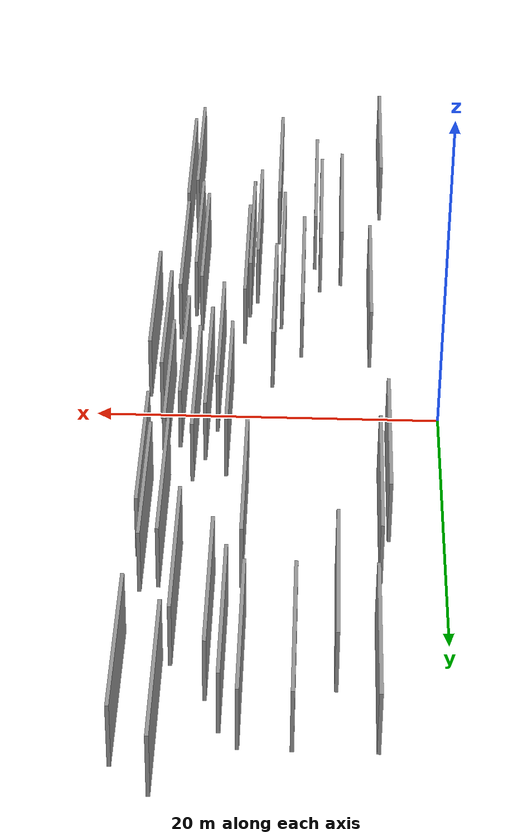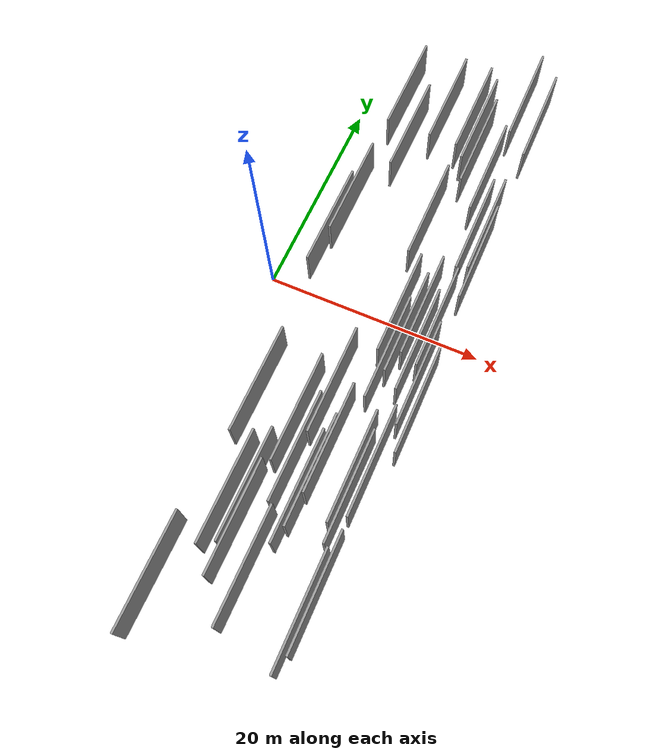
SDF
<sdf version="1.6">
 <world name="default">
  <scene>
   <sky><clouds><speed>12</speed></clouds></sky>
   <ambient>0.4 0.4 0.4 1</ambient>
   <background>0.7 0.7 0.7 1</background>
   <shadows>1</shadows>
  </scene>
  <gravity>0 0 -9.8066</gravity>
  <magnetic_field>6e-06 2.3e-05 -4.2e-05</magnetic_field>
  <physics default="0" name="default_physics" type="ode">
   <ode>
    <solver>
     <type>quick</type>
     <iters>10</iters>
     <sor>1.0</sor>
     <use_dynamic_moi_rescaling>0</use_dynamic_moi_rescaling>
    </solver>
    <constraints>
     <cfm>0</cfm>
     <erp>0.2</erp>
     <contact_max_correcting_vel>100</contact_max_correcting_vel>
     <contact_surface_layer>0.001</contact_surface_layer>
    </constraints>
   </ode>
   <max_step_size>0.004</max_step_size>
   <real_time_factor>1</real_time_factor>
   <real_time_update_rate>250</real_time_update_rate>
  </physics>
  <light name="sun" type="directional">
   <pose>0 0 10 0 0 0</pose>
   <diffuse>0.8 0.8 0.8 1</diffuse>
   <specular>0.2 0.2 0.2 1</specular>
   <attenuation>
    <range>1000</range>
    <constant>0.9</constant>
    <linear>0.01</linear>
    <quadratic>0.001</quadratic>
   </attenuation>
   <direction>-0.5 0.1 -0.9</direction>
  </light>
  <model name="grey_wall_1">
   <static>1</static>
   <pose>5.8728 18.7389 0.0 0.000000 0.000000 1.570796</pose>
   <link name="link">
    <pose>0 0 2.00 0 0 0</pose>
    <collision name="collision"><geometry><box><size>10.00 0.2 4.00</size></box></geometry></collision>
    <visual name="visual">
     <cast_shadows>0</cast_shadows>
     <geometry><box><size>10.00 0.2 4.00</size></box></geometry>
     <material>
      <script>
       <uri>model://grey_wall/materials/scripts</uri>
       <uri>model://grey_wall/materials/textures</uri>
       <name>vrc/grey_wall</name>
      </script>
     </material>
    </visual>
   </link>
  </model>
  <model name="grey_wall_2">
   <static>1</static>
   <pose>15.1165 -25.6748 0.0 0.000000 0.000000 1.570796</pose>
   <link name="link">
    <pose>0 0 2.00 0 0 0</pose>
    <collision name="collision"><geometry><box><size>10.00 0.2 4.00</size></box></geometry></collision>
    <visual name="visual">
     <cast_shadows>0</cast_shadows>
     <geometry><box><size>10.00 0.2 4.00</size></box></geometry>
     <material>
      <script>
       <uri>model://grey_wall/materials/scripts</uri>
       <uri>model://grey_wall/materials/textures</uri>
       <name>vrc/grey_wall</name>
      </script>
     </material>
    </visual>
   </link>
  </model>
  <model name="grey_wall_3">
   <static>1</static>
   <pose>11.5987 -12.6963 0.0 0.000000 0.000000 1.570796</pose>
   <link name="link">
    <pose>0 0 2.00 0 0 0</pose>
    <collision name="collision"><geometry><box><size>10.00 0.2 4.00</size></box></geometry></collision>
    <visual name="visual">
     <cast_shadows>0</cast_shadows>
     <geometry><box><size>10.00 0.2 4.00</size></box></geometry>
     <material>
      <script>
       <uri>model://grey_wall/materials/scripts</uri>
       <uri>model://grey_wall/materials/textures</uri>
       <name>vrc/grey_wall</name>
      </script>
     </material>
    </visual>
   </link>
  </model>
  <model name="grey_wall_4">
   <static>1</static>
   <pose>13.4539 -0.6792 0.0 0.000000 0.000000 1.570796</pose>
   <link name="link">
    <pose>0 0 2.00 0 0 0</pose>
    <collision name="collision"><geometry><box><size>10.00 0.2 4.00</size></box></geometry></collision>
    <visual name="visual">
     <cast_shadows>0</cast_shadows>
     <geometry><box><size>10.00 0.2 4.00</size></box></geometry>
     <material>
      <script>
       <uri>model://grey_wall/materials/scripts</uri>
       <uri>model://grey_wall/materials/textures</uri>
       <name>vrc/grey_wall</name>
      </script>
     </material>
    </visual>
   </link>
  </model>
  <model name="grey_wall_5">
   <static>1</static>
   <pose>14.0933 1.3699 0.0 0.000000 0.000000 1.570796</pose>
   <link name="link">
    <pose>0 0 2.00 0 0 0</pose>
    <collision name="collision"><geometry><box><size>10.00 0.2 4.00</size></box></geometry></collision>
    <visual name="visual">
     <cast_shadows>0</cast_shadows>
     <geometry><box><size>10.00 0.2 4.00</size></box></geometry>
     <material>
      <script>
       <uri>model://grey_wall/materials/scripts</uri>
       <uri>model://grey_wall/materials/textures</uri>
       <name>vrc/grey_wall</name>
      </script>
     </material>
    </visual>
   </link>
  </model>
  <model name="grey_wall_6">
   <static>1</static>
   <pose>11.3652 -15.6783 0.0 0.000000 0.000000 1.570796</pose>
   <link name="link">
    <pose>0 0 2.00 0 0 0</pose>
    <collision name="collision"><geometry><box><size>10.00 0.2 4.00</size></box></geometry></collision>
    <visual name="visual">
     <cast_shadows>0</cast_shadows>
     <geometry><box><size>10.00 0.2 4.00</size></box></geometry>
     <material>
      <script>
       <uri>model://grey_wall/materials/scripts</uri>
       <uri>model://grey_wall/materials/textures</uri>
       <name>vrc/grey_wall</name>
      </script>
     </material>
    </visual>
   </link>
  </model>
  <model name="grey_wall_7">
   <static>1</static>
   <pose>8.0963 -11.3544 0.0 0.000000 0.000000 1.570796</pose>
   <link name="link">
    <pose>0 0 2.00 0 0 0</pose>
    <collision name="collision"><geometry><box><size>10.00 0.2 4.00</size></box></geometry></collision>
    <visual name="visual">
     <cast_shadows>0</cast_shadows>
     <geometry><box><size>10.00 0.2 4.00</size></box></geometry>
     <material>
      <script>
       <uri>model://grey_wall/materials/scripts</uri>
       <uri>model://grey_wall/materials/textures</uri>
       <name>vrc/grey_wall</name>
      </script>
     </material>
    </visual>
   </link>
  </model>
  <model name="grey_wall_8">
   <static>1</static>
   <pose>14.9226 26.5266 0.0 0.000000 0.000000 1.570796</pose>
   <link name="link">
    <pose>0 0 2.00 0 0 0</pose>
    <collision name="collision"><geometry><box><size>10.00 0.2 4.00</size></box></geometry></collision>
    <visual name="visual">
     <cast_shadows>0</cast_shadows>
     <geometry><box><size>10.00 0.2 4.00</size></box></geometry>
     <material>
      <script>
       <uri>model://grey_wall/materials/scripts</uri>
       <uri>model://grey_wall/materials/textures</uri>
       <name>vrc/grey_wall</name>
      </script>
     </material>
    </visual>
   </link>
  </model>
  <model name="grey_wall_9">
   <static>1</static>
   <pose>11.7307 21.9676 0.0 0.000000 0.000000 1.570796</pose>
   <link name="link">
    <pose>0 0 2.00 0 0 0</pose>
    <collision name="collision"><geometry><box><size>10.00 0.2 4.00</size></box></geometry></collision>
    <visual name="visual">
     <cast_shadows>0</cast_shadows>
     <geometry><box><size>10.00 0.2 4.00</size></box></geometry>
     <material>
      <script>
       <uri>model://grey_wall/materials/scripts</uri>
       <uri>model://grey_wall/materials/textures</uri>
       <name>vrc/grey_wall</name>
      </script>
     </material>
    </visual>
   </link>
  </model>
  <model name="grey_wall_10">
   <static>1</static>
   <pose>16.7326 8.2308 0.0 0.000000 0.000000 1.570796</pose>
   <link name="link">
    <pose>0 0 2.00 0 0 0</pose>
    <collision name="collision"><geometry><box><size>10.00 0.2 4.00</size></box></geometry></collision>
    <visual name="visual">
     <cast_shadows>0</cast_shadows>
     <geometry><box><size>10.00 0.2 4.00</size></box></geometry>
     <material>
      <script>
       <uri>model://grey_wall/materials/scripts</uri>
       <uri>model://grey_wall/materials/textures</uri>
       <name>vrc/grey_wall</name>
      </script>
     </material>
    </visual>
   </link>
  </model>
  <model name="grey_wall_11">
   <static>1</static>
   <pose>9.7531 -24.4220 0.0 0.000000 0.000000 1.570796</pose>
   <link name="link">
    <pose>0 0 2.00 0 0 0</pose>
    <collision name="collision"><geometry><box><size>10.00 0.2 4.00</size></box></geometry></collision>
    <visual name="visual">
     <cast_shadows>0</cast_shadows>
     <geometry><box><size>10.00 0.2 4.00</size></box></geometry>
     <material>
      <script>
       <uri>model://grey_wall/materials/scripts</uri>
       <uri>model://grey_wall/materials/textures</uri>
       <name>vrc/grey_wall</name>
      </script>
     </material>
    </visual>
   </link>
  </model>
  <model name="grey_wall_12">
   <static>1</static>
   <pose>9.7805 -8.0436 0.0 0.000000 0.000000 1.570796</pose>
   <link name="link">
    <pose>0 0 2.00 0 0 0</pose>
    <collision name="collision"><geometry><box><size>10.00 0.2 4.00</size></box></geometry></collision>
    <visual name="visual">
     <cast_shadows>0</cast_shadows>
     <geometry><box><size>10.00 0.2 4.00</size></box></geometry>
     <material>
      <script>
       <uri>model://grey_wall/materials/scripts</uri>
       <uri>model://grey_wall/materials/textures</uri>
       <name>vrc/grey_wall</name>
      </script>
     </material>
    </visual>
   </link>
  </model>
  <model name="grey_wall_13">
   <static>1</static>
   <pose>3.7612 23.1883 0.0 0.000000 0.000000 1.570796</pose>
   <link name="link">
    <pose>0 0 2.00 0 0 0</pose>
    <collision name="collision"><geometry><box><size>10.00 0.2 4.00</size></box></geometry></collision>
    <visual name="visual">
     <cast_shadows>0</cast_shadows>
     <geometry><box><size>10.00 0.2 4.00</size></box></geometry>
     <material>
      <script>
       <uri>model://grey_wall/materials/scripts</uri>
       <uri>model://grey_wall/materials/textures</uri>
       <name>vrc/grey_wall</name>
      </script>
     </material>
    </visual>
   </link>
  </model>
  <model name="grey_wall_14">
   <static>1</static>
   <pose>12.8696 -3.4673 0.0 0.000000 0.000000 1.570796</pose>
   <link name="link">
    <pose>0 0 2.00 0 0 0</pose>
    <collision name="collision"><geometry><box><size>10.00 0.2 4.00</size></box></geometry></collision>
    <visual name="visual">
     <cast_shadows>0</cast_shadows>
     <geometry><box><size>10.00 0.2 4.00</size></box></geometry>
     <material>
      <script>
       <uri>model://grey_wall/materials/scripts</uri>
       <uri>model://grey_wall/materials/textures</uri>
       <name>vrc/grey_wall</name>
      </script>
     </material>
    </visual>
   </link>
  </model>
  <model name="grey_wall_15">
   <static>1</static>
   <pose>12.1952 0.8272 0.0 0.000000 0.000000 1.570796</pose>
   <link name="link">
    <pose>0 0 2.00 0 0 0</pose>
    <collision name="collision"><geometry><box><size>10.00 0.2 4.00</size></box></geometry></collision>
    <visual name="visual">
     <cast_shadows>0</cast_shadows>
     <geometry><box><size>10.00 0.2 4.00</size></box></geometry>
     <material>
      <script>
       <uri>model://grey_wall/materials/scripts</uri>
       <uri>model://grey_wall/materials/textures</uri>
       <name>vrc/grey_wall</name>
      </script>
     </material>
    </visual>
   </link>
  </model>
  <model name="grey_wall_16">
   <static>1</static>
   <pose>5.7257 -19.5412 0.0 0.000000 0.000000 1.570796</pose>
   <link name="link">
    <pose>0 0 2.00 0 0 0</pose>
    <collision name="collision"><geometry><box><size>10.00 0.2 4.00</size></box></geometry></collision>
    <visual name="visual">
     <cast_shadows>0</cast_shadows>
     <geometry><box><size>10.00 0.2 4.00</size></box></geometry>
     <material>
      <script>
       <uri>model://grey_wall/materials/scripts</uri>
       <uri>model://grey_wall/materials/textures</uri>
       <name>vrc/grey_wall</name>
      </script>
     </material>
    </visual>
   </link>
  </model>
  <model name="grey_wall_17">
   <static>1</static>
   <pose>15.6199 -24.0431 0.0 0.000000 0.000000 1.570796</pose>
   <link name="link">
    <pose>0 0 2.00 0 0 0</pose>
    <collision name="collision"><geometry><box><size>10.00 0.2 4.00</size></box></geometry></collision>
    <visual name="visual">
     <cast_shadows>0</cast_shadows>
     <geometry><box><size>10.00 0.2 4.00</size></box></geometry>
     <material>
      <script>
       <uri>model://grey_wall/materials/scripts</uri>
       <uri>model://grey_wall/materials/textures</uri>
       <name>vrc/grey_wall</name>
      </script>
     </material>
    </visual>
   </link>
  </model>
  <model name="grey_wall_18">
   <static>1</static>
   <pose>16.4174 11.1938 0.0 0.000000 0.000000 1.570796</pose>
   <link name="link">
    <pose>0 0 2.00 0 0 0</pose>
    <collision name="collision"><geometry><box><size>10.00 0.2 4.00</size></box></geometry></collision>
    <visual name="visual">
     <cast_shadows>0</cast_shadows>
     <geometry><box><size>10.00 0.2 4.00</size></box></geometry>
     <material>
      <script>
       <uri>model://grey_wall/materials/scripts</uri>
       <uri>model://grey_wall/materials/textures</uri>
       <name>vrc/grey_wall</name>
      </script>
     </material>
    </visual>
   </link>
  </model>
  <model name="grey_wall_19">
   <static>1</static>
   <pose>3.1681 -27.7267 0.0 0.000000 0.000000 1.570796</pose>
   <link name="link">
    <pose>0 0 2.00 0 0 0</pose>
    <collision name="collision"><geometry><box><size>10.00 0.2 4.00</size></box></geometry></collision>
    <visual name="visual">
     <cast_shadows>0</cast_shadows>
     <geometry><box><size>10.00 0.2 4.00</size></box></geometry>
     <material>
      <script>
       <uri>model://grey_wall/materials/scripts</uri>
       <uri>model://grey_wall/materials/textures</uri>
       <name>vrc/grey_wall</name>
      </script>
     </material>
    </visual>
   </link>
  </model>
  <model name="grey_wall_20">
   <static>1</static>
   <pose>14.9461 -1.8319 0.0 0.000000 0.000000 1.570796</pose>
   <link name="link">
    <pose>0 0 2.00 0 0 0</pose>
    <collision name="collision"><geometry><box><size>10.00 0.2 4.00</size></box></geometry></collision>
    <visual name="visual">
     <cast_shadows>0</cast_shadows>
     <geometry><box><size>10.00 0.2 4.00</size></box></geometry>
     <material>
      <script>
       <uri>model://grey_wall/materials/scripts</uri>
       <uri>model://grey_wall/materials/textures</uri>
       <name>vrc/grey_wall</name>
      </script>
     </material>
    </visual>
   </link>
  </model>
  <model name="grey_wall_21">
   <static>1</static>
   <pose>14.7141 -15.6450 0.0 0.000000 0.000000 1.570796</pose>
   <link name="link">
    <pose>0 0 2.00 0 0 0</pose>
    <collision name="collision"><geometry><box><size>10.00 0.2 4.00</size></box></geometry></collision>
    <visual name="visual">
     <cast_shadows>0</cast_shadows>
     <geometry><box><size>10.00 0.2 4.00</size></box></geometry>
     <material>
      <script>
       <uri>model://grey_wall/materials/scripts</uri>
       <uri>model://grey_wall/materials/textures</uri>
       <name>vrc/grey_wall</name>
      </script>
     </material>
    </visual>
   </link>
  </model>
  <model name="grey_wall_22">
   <static>1</static>
   <pose>14.2834 -14.0796 0.0 0.000000 0.000000 1.570796</pose>
   <link name="link">
    <pose>0 0 2.00 0 0 0</pose>
    <collision name="collision"><geometry><box><size>10.00 0.2 4.00</size></box></geometry></collision>
    <visual name="visual">
     <cast_shadows>0</cast_shadows>
     <geometry><box><size>10.00 0.2 4.00</size></box></geometry>
     <material>
      <script>
       <uri>model://grey_wall/materials/scripts</uri>
       <uri>model://grey_wall/materials/textures</uri>
       <name>vrc/grey_wall</name>
      </script>
     </material>
    </visual>
   </link>
  </model>
  <model name="grey_wall_23">
   <static>1</static>
   <pose>16.9758 24.5223 0.0 0.000000 0.000000 1.570796</pose>
   <link name="link">
    <pose>0 0 2.00 0 0 0</pose>
    <collision name="collision"><geometry><box><size>10.00 0.2 4.00</size></box></geometry></collision>
    <visual name="visual">
     <cast_shadows>0</cast_shadows>
     <geometry><box><size>10.00 0.2 4.00</size></box></geometry>
     <material>
      <script>
       <uri>model://grey_wall/materials/scripts</uri>
       <uri>model://grey_wall/materials/textures</uri>
       <name>vrc/grey_wall</name>
      </script>
     </material>
    </visual>
   </link>
  </model>
  <model name="grey_wall_24">
   <static>1</static>
   <pose>10.7554 23.1111 0.0 0.000000 0.000000 1.570796</pose>
   <link name="link">
    <pose>0 0 2.00 0 0 0</pose>
    <collision name="collision"><geometry><box><size>10.00 0.2 4.00</size></box></geometry></collision>
    <visual name="visual">
     <cast_shadows>0</cast_shadows>
     <geometry><box><size>10.00 0.2 4.00</size></box></geometry>
     <material>
      <script>
       <uri>model://grey_wall/materials/scripts</uri>
       <uri>model://grey_wall/materials/textures</uri>
       <name>vrc/grey_wall</name>
      </script>
     </material>
    </visual>
   </link>
  </model>
  <model name="grey_wall_25">
   <static>1</static>
   <pose>10.9411 -17.2613 0.0 0.000000 0.000000 1.570796</pose>
   <link name="link">
    <pose>0 0 2.00 0 0 0</pose>
    <collision name="collision"><geometry><box><size>10.00 0.2 4.00</size></box></geometry></collision>
    <visual name="visual">
     <cast_shadows>0</cast_shadows>
     <geometry><box><size>10.00 0.2 4.00</size></box></geometry>
     <material>
      <script>
       <uri>model://grey_wall/materials/scripts</uri>
       <uri>model://grey_wall/materials/textures</uri>
       <name>vrc/grey_wall</name>
      </script>
     </material>
    </visual>
   </link>
  </model>
  <model name="grey_wall_26">
   <static>1</static>
   <pose>15.6875 0.8320 0.0 0.000000 0.000000 1.570796</pose>
   <link name="link">
    <pose>0 0 2.00 0 0 0</pose>
    <collision name="collision"><geometry><box><size>10.00 0.2 4.00</size></box></geometry></collision>
    <visual name="visual">
     <cast_shadows>0</cast_shadows>
     <geometry><box><size>10.00 0.2 4.00</size></box></geometry>
     <material>
      <script>
       <uri>model://grey_wall/materials/scripts</uri>
       <uri>model://grey_wall/materials/textures</uri>
       <name>vrc/grey_wall</name>
      </script>
     </material>
    </visual>
   </link>
  </model>
  <model name="grey_wall_27">
   <static>1</static>
   <pose>16.9857 -6.8696 0.0 0.000000 0.000000 1.570796</pose>
   <link name="link">
    <pose>0 0 2.00 0 0 0</pose>
    <collision name="collision"><geometry><box><size>10.00 0.2 4.00</size></box></geometry></collision>
    <visual name="visual">
     <cast_shadows>0</cast_shadows>
     <geometry><box><size>10.00 0.2 4.00</size></box></geometry>
     <material>
      <script>
       <uri>model://grey_wall/materials/scripts</uri>
       <uri>model://grey_wall/materials/textures</uri>
       <name>vrc/grey_wall</name>
      </script>
     </material>
    </visual>
   </link>
  </model>
  <model name="grey_wall_28">
   <static>1</static>
   <pose>7.3881 -21.4155 0.0 0.000000 0.000000 1.570796</pose>
   <link name="link">
    <pose>0 0 2.00 0 0 0</pose>
    <collision name="collision"><geometry><box><size>10.00 0.2 4.00</size></box></geometry></collision>
    <visual name="visual">
     <cast_shadows>0</cast_shadows>
     <geometry><box><size>10.00 0.2 4.00</size></box></geometry>
     <material>
      <script>
       <uri>model://grey_wall/materials/scripts</uri>
       <uri>model://grey_wall/materials/textures</uri>
       <name>vrc/grey_wall</name>
      </script>
     </material>
    </visual>
   </link>
  </model>
  <model name="grey_wall_29">
   <static>1</static>
   <pose>15.4405 10.8149 0.0 0.000000 0.000000 1.570796</pose>
   <link name="link">
    <pose>0 0 2.00 0 0 0</pose>
    <collision name="collision"><geometry><box><size>10.00 0.2 4.00</size></box></geometry></collision>
    <visual name="visual">
     <cast_shadows>0</cast_shadows>
     <geometry><box><size>10.00 0.2 4.00</size></box></geometry>
     <material>
      <script>
       <uri>model://grey_wall/materials/scripts</uri>
       <uri>model://grey_wall/materials/textures</uri>
       <name>vrc/grey_wall</name>
      </script>
     </material>
    </visual>
   </link>
  </model>
  <model name="grey_wall_30">
   <static>1</static>
   <pose>16.1586 -4.6386 0.0 0.000000 0.000000 1.570796</pose>
   <link name="link">
    <pose>0 0 2.00 0 0 0</pose>
    <collision name="collision"><geometry><box><size>10.00 0.2 4.00</size></box></geometry></collision>
    <visual name="visual">
     <cast_shadows>0</cast_shadows>
     <geometry><box><size>10.00 0.2 4.00</size></box></geometry>
     <material>
      <script>
       <uri>model://grey_wall/materials/scripts</uri>
       <uri>model://grey_wall/materials/textures</uri>
       <name>vrc/grey_wall</name>
      </script>
     </material>
    </visual>
   </link>
  </model>
  <model name="grey_wall_31">
   <static>1</static>
   <pose>14.4208 17.0712 0.0 0.000000 0.000000 1.570796</pose>
   <link name="link">
    <pose>0 0 2.00 0 0 0</pose>
    <collision name="collision"><geometry><box><size>10.00 0.2 4.00</size></box></geometry></collision>
    <visual name="visual">
     <cast_shadows>0</cast_shadows>
     <geometry><box><size>10.00 0.2 4.00</size></box></geometry>
     <material>
      <script>
       <uri>model://grey_wall/materials/scripts</uri>
       <uri>model://grey_wall/materials/textures</uri>
       <name>vrc/grey_wall</name>
      </script>
     </material>
    </visual>
   </link>
  </model>
  <model name="grey_wall_32">
   <static>1</static>
   <pose>8.0457 23.1736 0.0 0.000000 0.000000 1.570796</pose>
   <link name="link">
    <pose>0 0 2.00 0 0 0</pose>
    <collision name="collision"><geometry><box><size>10.00 0.2 4.00</size></box></geometry></collision>
    <visual name="visual">
     <cast_shadows>0</cast_shadows>
     <geometry><box><size>10.00 0.2 4.00</size></box></geometry>
     <material>
      <script>
       <uri>model://grey_wall/materials/scripts</uri>
       <uri>model://grey_wall/materials/textures</uri>
       <name>vrc/grey_wall</name>
      </script>
     </material>
    </visual>
   </link>
  </model>
  <model name="grey_wall_33">
   <static>1</static>
   <pose>7.0364 -18.7599 0.0 0.000000 0.000000 1.570796</pose>
   <link name="link">
    <pose>0 0 2.00 0 0 0</pose>
    <collision name="collision"><geometry><box><size>10.00 0.2 4.00</size></box></geometry></collision>
    <visual name="visual">
     <cast_shadows>0</cast_shadows>
     <geometry><box><size>10.00 0.2 4.00</size></box></geometry>
     <material>
      <script>
       <uri>model://grey_wall/materials/scripts</uri>
       <uri>model://grey_wall/materials/textures</uri>
       <name>vrc/grey_wall</name>
      </script>
     </material>
    </visual>
   </link>
  </model>
  <model name="grey_wall_34">
   <static>1</static>
   <pose>9.3821 -14.4022 0.0 0.000000 0.000000 1.570796</pose>
   <link name="link">
    <pose>0 0 2.00 0 0 0</pose>
    <collision name="collision"><geometry><box><size>10.00 0.2 4.00</size></box></geometry></collision>
    <visual name="visual">
     <cast_shadows>0</cast_shadows>
     <geometry><box><size>10.00 0.2 4.00</size></box></geometry>
     <material>
      <script>
       <uri>model://grey_wall/materials/scripts</uri>
       <uri>model://grey_wall/materials/textures</uri>
       <name>vrc/grey_wall</name>
      </script>
     </material>
    </visual>
   </link>
  </model>
  <model name="grey_wall_35">
   <static>1</static>
   <pose>3.0269 6.4592 0.0 0.000000 0.000000 1.570796</pose>
   <link name="link">
    <pose>0 0 2.00 0 0 0</pose>
    <collision name="collision"><geometry><box><size>10.00 0.2 4.00</size></box></geometry></collision>
    <visual name="visual">
     <cast_shadows>0</cast_shadows>
     <geometry><box><size>10.00 0.2 4.00</size></box></geometry>
     <material>
      <script>
       <uri>model://grey_wall/materials/scripts</uri>
       <uri>model://grey_wall/materials/textures</uri>
       <name>vrc/grey_wall</name>
      </script>
     </material>
    </visual>
   </link>
  </model>
  <model name="grey_wall_36">
   <static>1</static>
   <pose>12.5267 19.6364 0.0 0.000000 0.000000 1.570796</pose>
   <link name="link">
    <pose>0 0 2.00 0 0 0</pose>
    <collision name="collision"><geometry><box><size>10.00 0.2 4.00</size></box></geometry></collision>
    <visual name="visual">
     <cast_shadows>0</cast_shadows>
     <geometry><box><size>10.00 0.2 4.00</size></box></geometry>
     <material>
      <script>
       <uri>model://grey_wall/materials/scripts</uri>
       <uri>model://grey_wall/materials/textures</uri>
       <name>vrc/grey_wall</name>
      </script>
     </material>
    </visual>
   </link>
  </model>
  <model name="grey_wall_37">
   <static>1</static>
   <pose>3.5224 10.1234 0.0 0.000000 0.000000 1.570796</pose>
   <link name="link">
    <pose>0 0 2.00 0 0 0</pose>
    <collision name="collision"><geometry><box><size>10.00 0.2 4.00</size></box></geometry></collision>
    <visual name="visual">
     <cast_shadows>0</cast_shadows>
     <geometry><box><size>10.00 0.2 4.00</size></box></geometry>
     <material>
      <script>
       <uri>model://grey_wall/materials/scripts</uri>
       <uri>model://grey_wall/materials/textures</uri>
       <name>vrc/grey_wall</name>
      </script>
     </material>
    </visual>
   </link>
  </model>
  <model name="grey_wall_38">
   <static>1</static>
   <pose>10.9959 10.6520 0.0 0.000000 0.000000 1.570796</pose>
   <link name="link">
    <pose>0 0 2.00 0 0 0</pose>
    <collision name="collision"><geometry><box><size>10.00 0.2 4.00</size></box></geometry></collision>
    <visual name="visual">
     <cast_shadows>0</cast_shadows>
     <geometry><box><size>10.00 0.2 4.00</size></box></geometry>
     <material>
      <script>
       <uri>model://grey_wall/materials/scripts</uri>
       <uri>model://grey_wall/materials/textures</uri>
       <name>vrc/grey_wall</name>
      </script>
     </material>
    </visual>
   </link>
  </model>
  <model name="grey_wall_39">
   <static>1</static>
   <pose>15.5379 -13.0557 0.0 0.000000 0.000000 1.570796</pose>
   <link name="link">
    <pose>0 0 2.00 0 0 0</pose>
    <collision name="collision"><geometry><box><size>10.00 0.2 4.00</size></box></geometry></collision>
    <visual name="visual">
     <cast_shadows>0</cast_shadows>
     <geometry><box><size>10.00 0.2 4.00</size></box></geometry>
     <material>
      <script>
       <uri>model://grey_wall/materials/scripts</uri>
       <uri>model://grey_wall/materials/textures</uri>
       <name>vrc/grey_wall</name>
      </script>
     </material>
    </visual>
   </link>
  </model>
  <model name="grey_wall_40">
   <static>1</static>
   <pose>3.9598 -10.4383 0.0 0.000000 0.000000 1.570796</pose>
   <link name="link">
    <pose>0 0 2.00 0 0 0</pose>
    <collision name="collision"><geometry><box><size>10.00 0.2 4.00</size></box></geometry></collision>
    <visual name="visual">
     <cast_shadows>0</cast_shadows>
     <geometry><box><size>10.00 0.2 4.00</size></box></geometry>
     <material>
      <script>
       <uri>model://grey_wall/materials/scripts</uri>
       <uri>model://grey_wall/materials/textures</uri>
       <name>vrc/grey_wall</name>
      </script>
     </material>
    </visual>
   </link>
  </model>
 </world>
</sdf>
